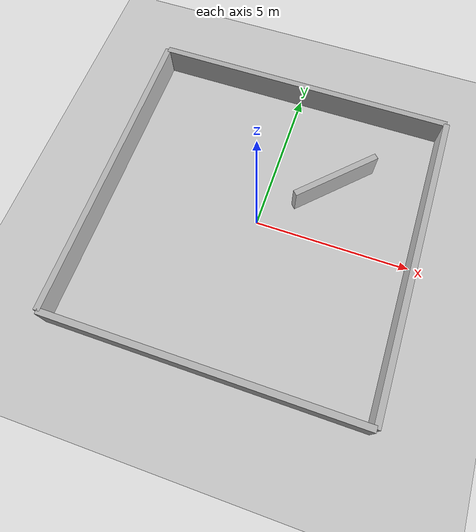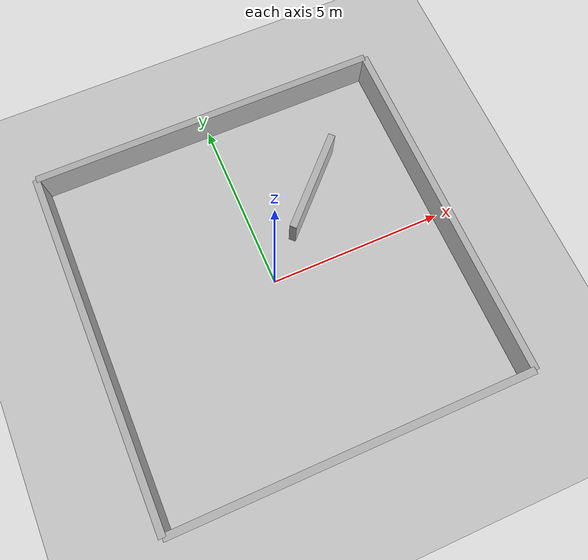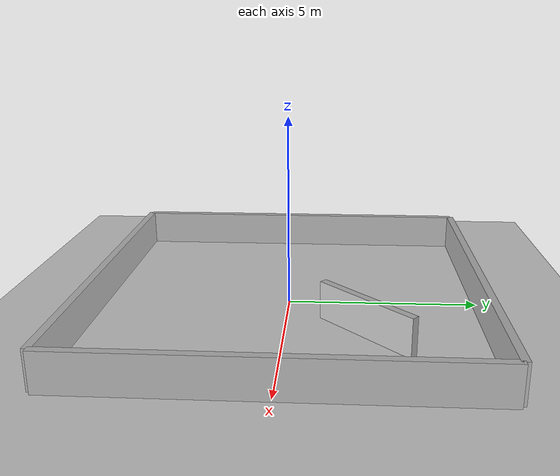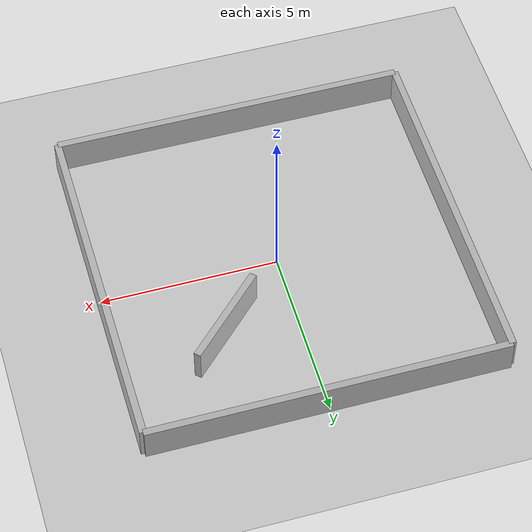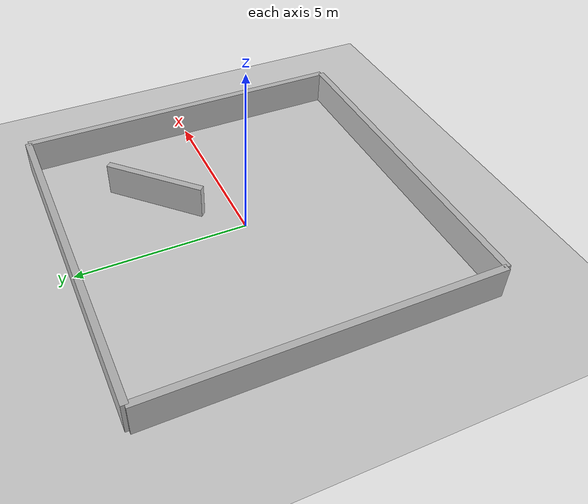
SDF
<?xml version="1.0" ?>
<sdf version="1.8">
  <world name="default">

    <include>
      <uri>https://fuel.gazebosim.org/1.0/OpenRobotics/models/Sun</uri>
    </include>

    <include>
      <uri>https://fuel.gazebosim.org/1.0/OpenRobotics/models/Ground Plane</uri>
    </include>

    <physics name="1ms" type="ignored">
      <max_step_size>0.001</max_step_size>
      <real_time_factor>1.0</real_time_factor>
    </physics>

    <model name='room_walls'>
      <static>1</static>
      <link name='link'>
        <collision name='collision'>
          <geometry>
            <box>
              <size>10 0.2 1.0</size>
            </box>
          </geometry>
        </collision>
        <visual name='visual'>
          <geometry>
            <box>
              <size>10 0.2 1.0</size>
            </box>
          </geometry>
          <material>
            <ambient>0.7 0.7 0.7 1</ambient>
            <diffuse>0.7 0.7 0.7 1</diffuse>
            <specular>0.01 0.01 0.01 1</specular>
          </material>
        </visual>
        <pose>0 5 0.5 0 0 0</pose>
      </link>

      <link name='south_wall'>
        <pose>0 -5 0.5 0 0 0</pose>
        <collision name='collision'><geometry><box><size>10 0.2 1.0</size></box></geometry></collision>
        <visual name='visual'><geometry><box><size>10 0.2 1.0</size></box></geometry></visual>
      </link>

      <link name='east_wall'>
        <pose>5 0 0.5 0 0 1.5708</pose>
        <collision name='collision'><geometry><box><size>10 0.2 1.0</size></box></geometry></collision>
        <visual name='visual'><geometry><box><size>10 0.2 1.0</size></box></geometry></visual>
      </link>

      <link name='west_wall'>
        <pose>-5 0 0.5 0 0 1.5708</pose>
        <collision name='collision'><geometry><box><size>10 0.2 1.0</size></box></geometry></collision>
        <visual name='visual'><geometry><box><size>10 0.2 1.0</size></box></geometry></visual>
      </link>

      <link name='middle_wall'>
        <pose>2 2 0.5 0 0 0.785</pose>
        <collision name='collision'><geometry><box><size>3 0.2 1.0</size></box></geometry></collision>
        <visual name='visual'><geometry><box><size>3 0.2 1.0</size></box></geometry></visual>
      </link>
    </model>
  </world>
</sdf>
